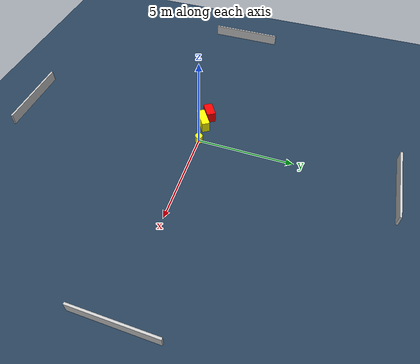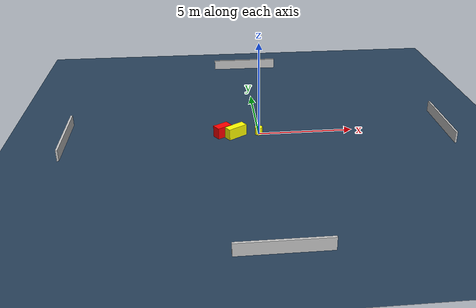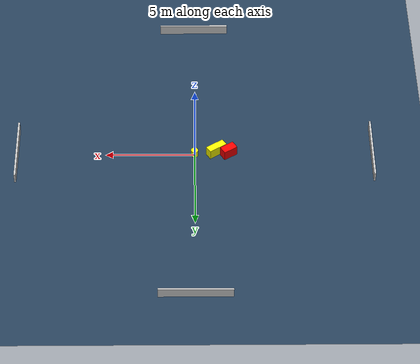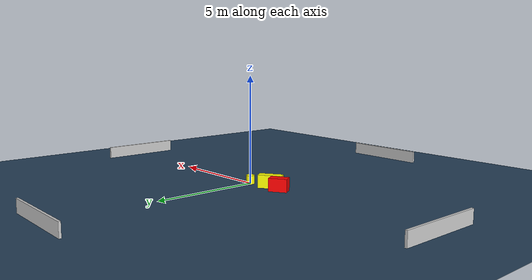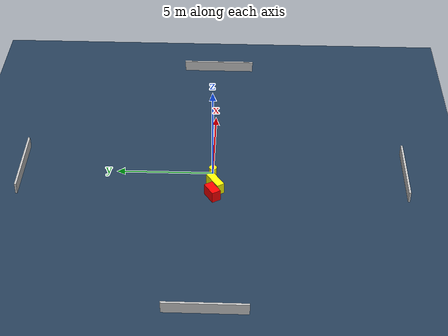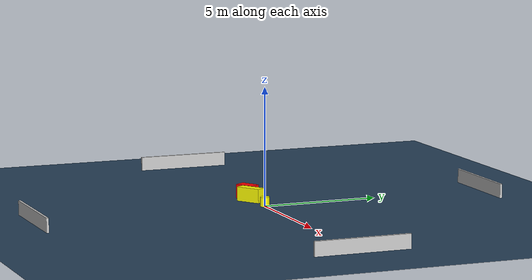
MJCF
<?xml version="1.0" ?>
<mujoco model="generated_environment">
  <option timestep="0.01" integrator="RK4" cone="elliptic"/>
  <default>
    <geom density="1"/>
  </default>
  <asset>
    <texture builtin="gradient" height="3072" name="skybox" rgb1="0.3 0.5 0.7" rgb2="0 0 0" type="skybox" width="512"/>
    <texture builtin="checker" height="300" name="groundplane" rgb1="0.2 0.3 0.4" rgb2="0.1 0.2 0.3" type="2d" width="300"/>
    <material name="groundplane" reflectance="0.2" texrepeat="5 5" texture="groundplane"/>
  </asset>
  <worldbody>
    <light dir="0 0 -1" directional="true" pos="0 0 1.5"/>
    <geom condim="3" friction="0.5 0.005 0.001" material="groundplane" name="floor" pos="0 0 0" size="0 0 0.05" type="plane"/>
    <body name="walls">
      <geom name="wall_1" condim="4" pos="-10.0 0.0 0.3" rgba="0.800000011920929 0.800000011920929 0.800000011920929 1.0" size="0.05 2.0 0.3" type="box"/>
      <geom name="wall_2" condim="4" pos="10.0 0.0 0.3" rgba="0.800000011920929 0.800000011920929 0.800000011920929 1.0" size="0.05 2.0 0.3" type="box"/>
      <geom name="wall_3" condim="4" pos="0.0 -10.0 0.3" rgba="0.800000011920929 0.800000011920929 0.800000011920929 1.0" size="2.0 0.05 0.3" type="box"/>
      <geom name="wall_4" condim="4" pos="0.0 10.0 0.3" rgba="0.800000011920929 0.800000011920929 0.800000011920929 1.0" size="2.0 0.05 0.3" type="box"/>
    </body>
    <body name="robot">
      <joint name="joint_x" type="slide" pos="0 0 0" axis="1 0 0"/>
      <joint name="joint_y" type="slide" pos="0 0 0" axis="0 1 0"/>
      <geom name="robot" type="cylinder" pos="0.0 0.0 0.2" size="0.2 0.2 0.0" mass="5.0" friction="1.0 0.005 0.0001" condim="4" rgba="1.0 1.0 0.0 1.0"/>
    </body>
    <body name="obstacle_1_movable">
      <geom name="obstacle_1_movable" condim="4" pos="-1.2226780483174193 -0.15836962646709907 0.3" euler="0 0 303.3610908075284" friction="0.0 0.005 0.001" rgba="1.0 1.0 0.0 1.0" size="0.20571484883234648 0.5473619920975886 0.3" type="box" mass="0.1"/>
      <joint type="free"/>
    </body>
    <body name="obstacle_2_static">
      <geom name="obstacle_2_static" condim="4" pos="-1.9121033664621585 -0.028465208573480442 0.3" euler="0 0 121.79429298857922" friction="0.0 0.005 0.001" rgba="1.0 0.0 0.0 1.0" size="0.23858847099058256 0.41675447787971687 0.3" type="box"/>
    </body>
  </worldbody>
  <actuator>
    <motor name="actuator_x" joint="joint_x" gear="1" ctrlrange="-1 1"/>
    <motor name="actuator_y" joint="joint_y" gear="1" ctrlrange="-1 1"/>
  </actuator>
</mujoco>
